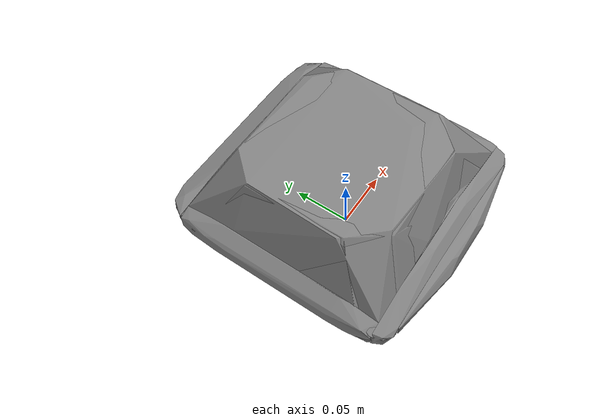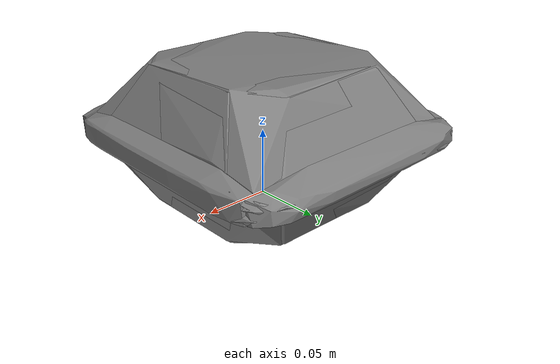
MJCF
<mujoco model="food_box1">
  <asset>
    <mesh file="../../meshes/train/food_box1/simple_mesh.stl" name="food_box1_mesh" scale="1 1 1"/>
    <mesh file="../../meshes/train/food_box1/food_box1_hull_1.stl" name="food_box1_hull_mesh_1" scale="1 1 1"/>
    <mesh file="../../meshes/train/food_box1/food_box1_hull_2.stl" name="food_box1_hull_mesh_2" scale="1 1 1"/>
    <mesh file="../../meshes/train/food_box1/food_box1_hull_3.stl" name="food_box1_hull_mesh_3" scale="1 1 1"/>
    <mesh file="../../meshes/train/food_box1/food_box1_hull_4.stl" name="food_box1_hull_mesh_4" scale="1 1 1"/>
    <mesh file="../../meshes/train/food_box1/food_box1_hull_5.stl" name="food_box1_hull_mesh_5" scale="1 1 1"/>
    <mesh file="../../meshes/train/food_box1/food_box1_hull_6.stl" name="food_box1_hull_mesh_6" scale="1 1 1"/>
  </asset>
  <worldbody>
    <body>
      <body name="object">
        <geom pos="0 0 0" mesh="food_box1_mesh" type="mesh" contype="0" conaffinity="0" group="1"/>
        <geom pos="0 0 0" mesh="food_box1_hull_mesh_1" type="mesh" margin="0.001" solimp="0.998 0.998 0.001" solref="0.001 1" density="2000" friction="0.95 0.3 0.1" group="0" condim="4"/>
        <geom pos="0 0 0" mesh="food_box1_hull_mesh_2" type="mesh" margin="0.001" solimp="0.998 0.998 0.001" solref="0.001 1" density="2000" friction="0.95 0.3 0.1" group="0" condim="4"/>
        <geom pos="0 0 0" mesh="food_box1_hull_mesh_3" type="mesh" margin="0.001" solimp="0.998 0.998 0.001" solref="0.001 1" density="2000" friction="0.95 0.3 0.1" group="0" condim="4"/>
        <geom pos="0 0 0" mesh="food_box1_hull_mesh_4" type="mesh" margin="0.001" solimp="0.998 0.998 0.001" solref="0.001 1" density="2000" friction="0.95 0.3 0.1" group="0" condim="4"/>
        <geom pos="0 0 0" mesh="food_box1_hull_mesh_5" type="mesh" margin="0.001" solimp="0.998 0.998 0.001" solref="0.001 1" density="2000" friction="0.95 0.3 0.1" group="0" condim="4"/>
        <geom pos="0 0 0" mesh="food_box1_hull_mesh_6" type="mesh" margin="0.001" solimp="0.998 0.998 0.001" solref="0.001 1" density="2000" friction="0.95 0.3 0.1" group="0" condim="4"/>
      </body>
      <site rgba="0 0 0 0" size="0.005" pos="0 0 -0.005" name="bottom_site"/>
      <site rgba="0 0 0 0" size="0.005" pos="0 0 0.02" name="top_site"/>
      <site rgba="0 0 0 0" size="0.005" pos="0.0375 0.02 0" name="horizontal_radius_site"/>
    </body>
  </worldbody>
</mujoco>
